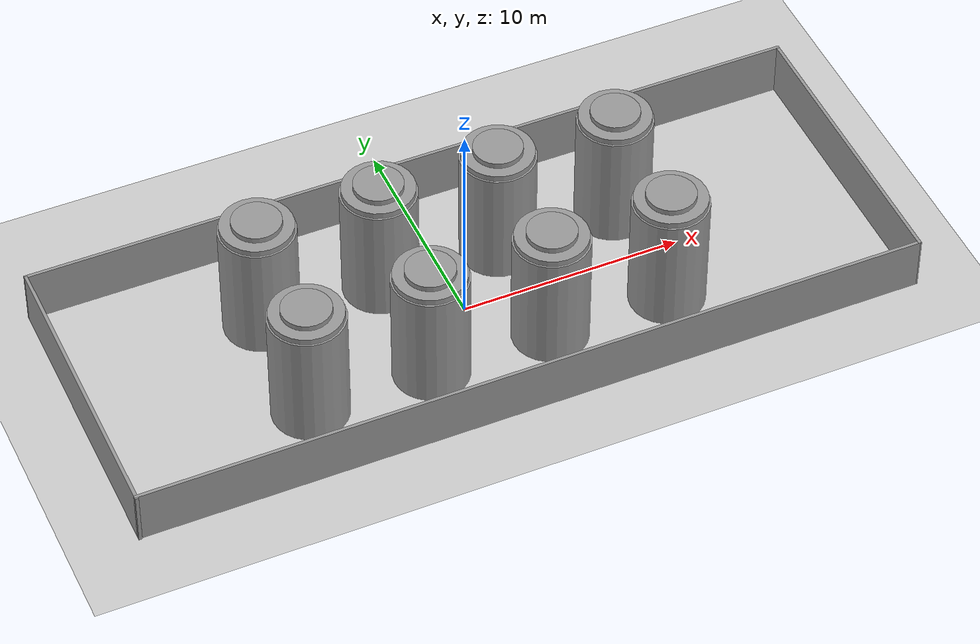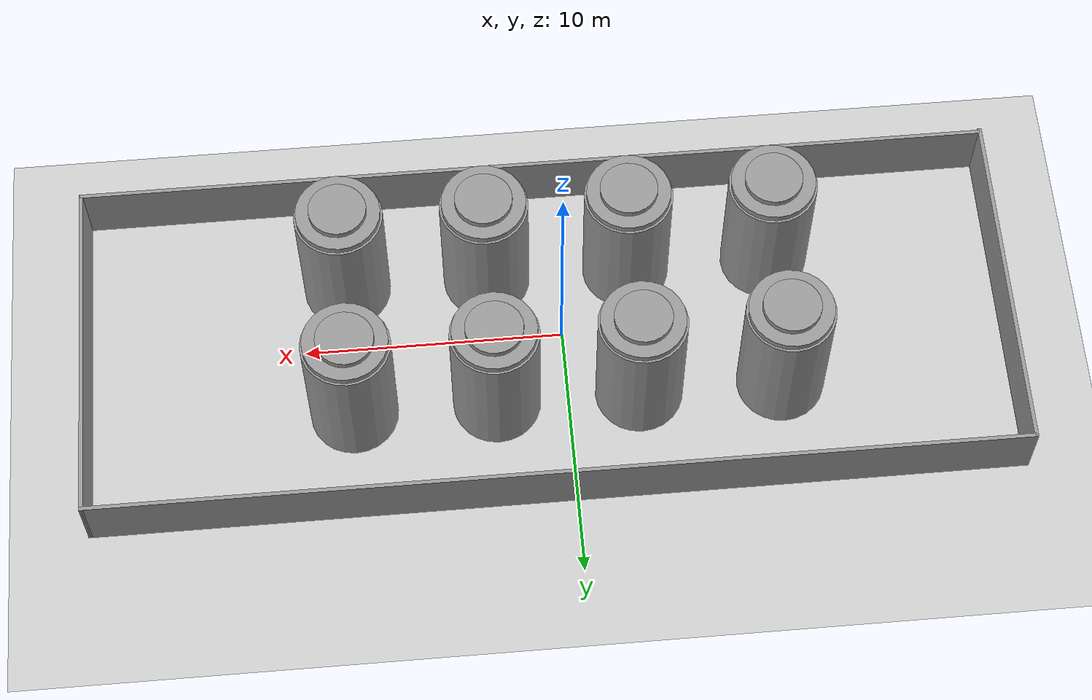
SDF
<sdf version="1.7">
 <world name="default">
  <light name="sun" type="directional">
   <pose>0 0 10 0 -0 0</pose>
   <diffuse>0.8 0.8 0.8 1</diffuse>
   <specular>0.2 0.2 0.2 1</specular>
   <attenuation>
    <range>1000</range>
    <constant>0.9</constant>
    <linear>0.01</linear>
    <quadratic>0.001</quadratic>
   </attenuation>
   <direction>-0.5 0.1 -0.9</direction>
   <spot><inner_angle>0</inner_angle><outer_angle>0</outer_angle><falloff>0</falloff></spot>
  </light>
  <model name="ground_plane">
   <static>1</static>
   <link name="link">
    <collision name="collision">
     <geometry><plane><normal>0 0 1</normal><size>100 100</size></plane></geometry>
     <surface>
      <contact><collide_bitmask>65535</collide_bitmask></contact>
      <friction><ode><mu>100</mu><mu2>50</mu2></ode></friction>
     </surface>
    </collision>
    <visual name="visual">
     <cast_shadows>0</cast_shadows>
     <geometry><plane><normal>0 0 1</normal><size>100 100</size></plane></geometry>
     <material>
      <script><uri>file://media/materials/scripts/gazebo.material</uri><name>Gazebo/Grey</name></script>
      <ambient>1 1 1 1</ambient>
     </material>
    </visual>
   </link>
  </model>
  <gravity>0 0 -9.8</gravity>
  <magnetic_field>6e-06 2.3e-05 -4.2e-05</magnetic_field>
  <atmosphere type="adiabatic"/>
  <physics type="ode">
   <max_step_size>0.001</max_step_size>
   <real_time_factor>1</real_time_factor>
   <real_time_update_rate>1000</real_time_update_rate>
  </physics>
  <scene><ambient>0.4 0.4 0.4 1</ambient><background>0 0.7 1 1</background><shadows>1</shadows></scene>
  <spherical_coordinates>
   <surface_model>EARTH_WGS84</surface_model>
   <latitude_deg>0</latitude_deg>
   <longitude_deg>0</longitude_deg>
   <elevation>0</elevation>
   <heading_deg>0</heading_deg>
  </spherical_coordinates>
  <model name="cask1">
   <link name="link">
    <inertial>
     <mass>1</mass>
     <inertia><ixx>0.145833</ixx><ixy>0</ixy><ixz>0</ixz><iyy>0.145833</iyy><iyz>0</iyz><izz>0.125</izz></inertia>
    </inertial>
    <self_collide>1</self_collide>
    <pose>0 0 2.8195 0 -0 0</pose>
    <visual name="visual">
     <geometry><cylinder><radius>1.683</radius><length>5.639</length></cylinder></geometry>
     <material>
      <script><name>Gazebo/Grey</name><uri>file://media/materials/scripts/gazebo.material</uri></script>
      <shader type="pixel"><normal_map>__default__</normal_map></shader>
      <ambient>0.75 0.75 0.75 1</ambient>
      <diffuse>0.7 0.7 0.7 1</diffuse>
      <specular>0.01 0.01 0.01 1</specular>
      <emissive>0 0 0 1</emissive>
     </material>
    </visual>
    <collision name="collision">
     <geometry><cylinder><radius>1.683</radius><length>5.639</length></cylinder></geometry>
     <surface>
      <friction>
       <ode><mu>1</mu><mu2>1</mu2><fdir1>0 0 0</fdir1><slip1>0</slip1><slip2>0</slip2></ode>
       <torsional>
        <coefficient>1</coefficient>
        <patch_radius>0</patch_radius>
        <surface_radius>0</surface_radius>
        <use_patch_radius>1</use_patch_radius>
        <ode><slip>0</slip></ode>
       </torsional>
      </friction>
      <bounce><restitution_coefficient>0</restitution_coefficient><threshold>1e+06</threshold></bounce>
      <contact>
       <collide_without_contact>0</collide_without_contact>
       <collide_without_contact_bitmask>1</collide_without_contact_bitmask>
       <collide_bitmask>1</collide_bitmask>
       <ode>
        <soft_cfm>0</soft_cfm>
        <soft_erp>0.2</soft_erp>
        <kp>1e+13</kp>
        <kd>1</kd>
        <max_vel>0.01</max_vel>
        <min_depth>0</min_depth>
       </ode>
       <bullet>
        <split_impulse>1</split_impulse>
        <split_impulse_penetration_threshold>-0.01</split_impulse_penetration_threshold>
        <soft_cfm>0</soft_cfm>
        <soft_erp>0.2</soft_erp>
        <kp>1e+13</kp>
        <kd>1</kd>
       </bullet>
      </contact>
     </surface>
    </collision>
   </link>
   <link name="link_0">
    <inertial>
     <mass>1</mass>
     <inertia><ixx>0.145833</ixx><ixy>0</ixy><ixz>0</ixz><iyy>0.145833</iyy><iyz>0</iyz><izz>0.125</izz></inertia>
    </inertial>
    <pose>0 0 5.7755 0 -0 0</pose>
    <self_collide>1</self_collide>
    <visual name="visual">
     <geometry><cylinder><radius>1.6</radius><length>0.273</length></cylinder></geometry>
     <material>
      <lighting>1</lighting>
      <script><uri>file://media/materials/scripts/gazebo.material</uri><name>Gazebo/Grey</name></script>
      <shader type="pixel"><normal_map>__default__</normal_map></shader>
      <ambient>0.74 0.74 0.74 1</ambient>
      <diffuse>0.7 0.7 0.7 1</diffuse>
      <specular>0.01 0.01 0.01 1</specular>
      <emissive>0 0 0 1</emissive>
     </material>
    </visual>
    <collision name="collision">
     <geometry><cylinder><radius>1.6</radius><length>0.273</length></cylinder></geometry>
     <surface>
      <friction>
       <ode><mu>1</mu><mu2>1</mu2><fdir1>0 0 0</fdir1><slip1>0</slip1><slip2>0</slip2></ode>
       <torsional>
        <coefficient>1</coefficient>
        <patch_radius>0</patch_radius>
        <surface_radius>0</surface_radius>
        <use_patch_radius>1</use_patch_radius>
        <ode><slip>0</slip></ode>
       </torsional>
      </friction>
      <bounce><restitution_coefficient>0</restitution_coefficient><threshold>1e+06</threshold></bounce>
      <contact>
       <collide_without_contact>0</collide_without_contact>
       <collide_without_contact_bitmask>1</collide_without_contact_bitmask>
       <collide_bitmask>1</collide_bitmask>
       <ode>
        <soft_cfm>0</soft_cfm>
        <soft_erp>0.2</soft_erp>
        <kp>1e+13</kp>
        <kd>1</kd>
        <max_vel>0.01</max_vel>
        <min_depth>0</min_depth>
       </ode>
       <bullet>
        <split_impulse>1</split_impulse>
        <split_impulse_penetration_threshold>-0.01</split_impulse_penetration_threshold>
        <soft_cfm>0</soft_cfm>
        <soft_erp>0.2</soft_erp>
        <kp>1e+13</kp>
        <kd>1</kd>
       </bullet>
      </contact>
     </surface>
    </collision>
   </link>
   <link name="link_1">
    <inertial>
     <mass>1</mass>
     <inertia><ixx>0.145833</ixx><ixy>0</ixy><ixz>0</ixz><iyy>0.145833</iyy><iyz>0</iyz><izz>0.125</izz></inertia>
    </inertial>
    <pose>-0 0 6.039 0 -0 0</pose>
    <self_collide>1</self_collide>
    <visual name="visual">
     <geometry><cylinder><radius>1.092</radius><length>0.254</length></cylinder></geometry>
     <material>
      <lighting>1</lighting>
      <script><uri>file://media/materials/scripts/gazebo.material</uri><name>Gazebo/Grey</name></script>
      <shader type="pixel"><normal_map>__default__</normal_map></shader>
      <ambient>0.73 0.73 0.73 1</ambient>
      <diffuse>0.7 0.7 0.7 1</diffuse>
      <specular>0.01 0.01 0.01 1</specular>
      <emissive>0 0 0 1</emissive>
     </material>
    </visual>
    <collision name="collision">
     <geometry><cylinder><radius>1.092</radius><length>0.254</length></cylinder></geometry>
     <surface>
      <friction>
       <ode><mu>1</mu><mu2>1</mu2><fdir1>0 0 0</fdir1><slip1>0</slip1><slip2>0</slip2></ode>
       <torsional>
        <coefficient>1</coefficient>
        <patch_radius>0</patch_radius>
        <surface_radius>0</surface_radius>
        <use_patch_radius>1</use_patch_radius>
        <ode><slip>0</slip></ode>
       </torsional>
      </friction>
      <bounce><restitution_coefficient>0</restitution_coefficient><threshold>1e+06</threshold></bounce>
      <contact>
       <collide_without_contact>0</collide_without_contact>
       <collide_without_contact_bitmask>1</collide_without_contact_bitmask>
       <collide_bitmask>1</collide_bitmask>
       <ode>
        <soft_cfm>0</soft_cfm>
        <soft_erp>0.2</soft_erp>
        <kp>1e+13</kp>
        <kd>1</kd>
        <max_vel>0.01</max_vel>
        <min_depth>0</min_depth>
       </ode>
       <bullet>
        <split_impulse>1</split_impulse>
        <split_impulse_penetration_threshold>-0.01</split_impulse_penetration_threshold>
        <soft_cfm>0</soft_cfm>
        <soft_erp>0.2</soft_erp>
        <kp>1e+13</kp>
        <kd>1</kd>
       </bullet>
      </contact>
     </surface>
    </collision>
   </link>
   <static>1</static>
   <pose>2.7432 2.7432 0 0 -0 0</pose>
  </model>
  <model name="cask1_0">
   <link name="link">
    <inertial>
     <mass>1</mass>
     <inertia><ixx>0.145833</ixx><ixy>0</ixy><ixz>0</ixz><iyy>0.145833</iyy><iyz>0</iyz><izz>0.125</izz></inertia>
    </inertial>
    <self_collide>1</self_collide>
    <pose>0 0 2.8195 0 -0 0</pose>
    <visual name="visual">
     <geometry><cylinder><radius>1.683</radius><length>5.639</length></cylinder></geometry>
     <material>
      <script><name>Gazebo/Grey</name><uri>file://media/materials/scripts/gazebo.material</uri></script>
      <shader type="pixel"><normal_map>__default__</normal_map></shader>
      <ambient>0.75 0.75 0.75 1</ambient>
      <diffuse>0.7 0.7 0.7 1</diffuse>
      <specular>0.01 0.01 0.01 1</specular>
      <emissive>0 0 0 1</emissive>
     </material>
    </visual>
    <collision name="collision">
     <geometry><cylinder><radius>1.683</radius><length>5.639</length></cylinder></geometry>
     <surface>
      <friction>
       <ode><mu>1</mu><mu2>1</mu2><fdir1>0 0 0</fdir1><slip1>0</slip1><slip2>0</slip2></ode>
       <torsional>
        <coefficient>1</coefficient>
        <patch_radius>0</patch_radius>
        <surface_radius>0</surface_radius>
        <use_patch_radius>1</use_patch_radius>
        <ode><slip>0</slip></ode>
       </torsional>
      </friction>
      <bounce><restitution_coefficient>0</restitution_coefficient><threshold>1e+06</threshold></bounce>
      <contact>
       <collide_without_contact>0</collide_without_contact>
       <collide_without_contact_bitmask>1</collide_without_contact_bitmask>
       <collide_bitmask>1</collide_bitmask>
       <ode>
        <soft_cfm>0</soft_cfm>
        <soft_erp>0.2</soft_erp>
        <kp>1e+13</kp>
        <kd>1</kd>
        <max_vel>0.01</max_vel>
        <min_depth>0</min_depth>
       </ode>
       <bullet>
        <split_impulse>1</split_impulse>
        <split_impulse_penetration_threshold>-0.01</split_impulse_penetration_threshold>
        <soft_cfm>0</soft_cfm>
        <soft_erp>0.2</soft_erp>
        <kp>1e+13</kp>
        <kd>1</kd>
       </bullet>
      </contact>
     </surface>
    </collision>
   </link>
   <link name="link_0">
    <inertial>
     <mass>1</mass>
     <inertia><ixx>0.145833</ixx><ixy>0</ixy><ixz>0</ixz><iyy>0.145833</iyy><iyz>0</iyz><izz>0.125</izz></inertia>
    </inertial>
    <pose>0 0 5.7755 0 -0 0</pose>
    <self_collide>1</self_collide>
    <visual name="visual">
     <geometry><cylinder><radius>1.6</radius><length>0.273</length></cylinder></geometry>
     <material>
      <lighting>1</lighting>
      <script><uri>file://media/materials/scripts/gazebo.material</uri><name>Gazebo/Grey</name></script>
      <shader type="pixel"><normal_map>__default__</normal_map></shader>
      <ambient>0.75 0.75 0.75 1</ambient>
      <diffuse>0.7 0.7 0.7 1</diffuse>
      <specular>0.01 0.01 0.01 1</specular>
      <emissive>0 0 0 1</emissive>
     </material>
    </visual>
    <collision name="collision">
     <geometry><cylinder><radius>1.6</radius><length>0.273</length></cylinder></geometry>
     <surface>
      <friction>
       <ode><mu>1</mu><mu2>1</mu2><fdir1>0 0 0</fdir1><slip1>0</slip1><slip2>0</slip2></ode>
       <torsional>
        <coefficient>1</coefficient>
        <patch_radius>0</patch_radius>
        <surface_radius>0</surface_radius>
        <use_patch_radius>1</use_patch_radius>
        <ode><slip>0</slip></ode>
       </torsional>
      </friction>
      <bounce><restitution_coefficient>0</restitution_coefficient><threshold>1e+06</threshold></bounce>
      <contact>
       <collide_without_contact>0</collide_without_contact>
       <collide_without_contact_bitmask>1</collide_without_contact_bitmask>
       <collide_bitmask>1</collide_bitmask>
       <ode>
        <soft_cfm>0</soft_cfm>
        <soft_erp>0.2</soft_erp>
        <kp>1e+13</kp>
        <kd>1</kd>
        <max_vel>0.01</max_vel>
        <min_depth>0</min_depth>
       </ode>
       <bullet>
        <split_impulse>1</split_impulse>
        <split_impulse_penetration_threshold>-0.01</split_impulse_penetration_threshold>
        <soft_cfm>0</soft_cfm>
        <soft_erp>0.2</soft_erp>
        <kp>1e+13</kp>
        <kd>1</kd>
       </bullet>
      </contact>
     </surface>
    </collision>
   </link>
   <link name="link_1">
    <inertial>
     <mass>1</mass>
     <inertia><ixx>0.145833</ixx><ixy>0</ixy><ixz>0</ixz><iyy>0.145833</iyy><iyz>0</iyz><izz>0.125</izz></inertia>
    </inertial>
    <pose>-0 0 6.039 0 -0 0</pose>
    <self_collide>1</self_collide>
    <visual name="visual">
     <geometry><cylinder><radius>1.092</radius><length>0.254</length></cylinder></geometry>
     <material>
      <lighting>1</lighting>
      <script><uri>file://media/materials/scripts/gazebo.material</uri><name>Gazebo/Grey</name></script>
      <shader type="pixel"><normal_map>__default__</normal_map></shader>
      <ambient>0.75 0.75 0.75 1</ambient>
      <diffuse>0.7 0.7 0.7 1</diffuse>
      <specular>0.01 0.01 0.01 1</specular>
      <emissive>0 0 0 1</emissive>
     </material>
    </visual>
    <collision name="collision">
     <geometry><cylinder><radius>1.092</radius><length>0.254</length></cylinder></geometry>
     <surface>
      <friction>
       <ode><mu>1</mu><mu2>1</mu2><fdir1>0 0 0</fdir1><slip1>0</slip1><slip2>0</slip2></ode>
       <torsional>
        <coefficient>1</coefficient>
        <patch_radius>0</patch_radius>
        <surface_radius>0</surface_radius>
        <use_patch_radius>1</use_patch_radius>
        <ode><slip>0</slip></ode>
       </torsional>
      </friction>
      <bounce><restitution_coefficient>0</restitution_coefficient><threshold>1e+06</threshold></bounce>
      <contact>
       <collide_without_contact>0</collide_without_contact>
       <collide_without_contact_bitmask>1</collide_without_contact_bitmask>
       <collide_bitmask>1</collide_bitmask>
       <ode>
        <soft_cfm>0</soft_cfm>
        <soft_erp>0.2</soft_erp>
        <kp>1e+13</kp>
        <kd>1</kd>
        <max_vel>0.01</max_vel>
        <min_depth>0</min_depth>
       </ode>
       <bullet>
        <split_impulse>1</split_impulse>
        <split_impulse_penetration_threshold>-0.01</split_impulse_penetration_threshold>
        <soft_cfm>0</soft_cfm>
        <soft_erp>0.2</soft_erp>
        <kp>1e+13</kp>
        <kd>1</kd>
       </bullet>
      </contact>
     </surface>
    </collision>
   </link>
   <static>1</static>
   <pose>2.7432 -2.7432 0 0 -0 0</pose>
  </model>
  <model name="cask1_1">
   <link name="link">
    <inertial>
     <mass>1</mass>
     <inertia><ixx>0.145833</ixx><ixy>0</ixy><ixz>0</ixz><iyy>0.145833</iyy><iyz>0</iyz><izz>0.125</izz></inertia>
    </inertial>
    <self_collide>1</self_collide>
    <pose>0 0 2.8195 0 -0 0</pose>
    <visual name="visual">
     <geometry><cylinder><radius>1.683</radius><length>5.639</length></cylinder></geometry>
     <material>
      <script><name>Gazebo/Grey</name><uri>file://media/materials/scripts/gazebo.material</uri></script>
      <shader type="pixel"><normal_map>__default__</normal_map></shader>
      <ambient>0.75 0.75 0.75 1</ambient>
      <diffuse>0.7 0.7 0.7 1</diffuse>
      <specular>0.01 0.01 0.01 1</specular>
      <emissive>0 0 0 1</emissive>
     </material>
    </visual>
    <collision name="collision">
     <geometry><cylinder><radius>1.683</radius><length>5.639</length></cylinder></geometry>
     <surface>
      <friction>
       <ode><mu>1</mu><mu2>1</mu2><fdir1>0 0 0</fdir1><slip1>0</slip1><slip2>0</slip2></ode>
       <torsional>
        <coefficient>1</coefficient>
        <patch_radius>0</patch_radius>
        <surface_radius>0</surface_radius>
        <use_patch_radius>1</use_patch_radius>
        <ode><slip>0</slip></ode>
       </torsional>
      </friction>
      <bounce><restitution_coefficient>0</restitution_coefficient><threshold>1e+06</threshold></bounce>
      <contact>
       <collide_without_contact>0</collide_without_contact>
       <collide_without_contact_bitmask>1</collide_without_contact_bitmask>
       <collide_bitmask>1</collide_bitmask>
       <ode>
        <soft_cfm>0</soft_cfm>
        <soft_erp>0.2</soft_erp>
        <kp>1e+13</kp>
        <kd>1</kd>
        <max_vel>0.01</max_vel>
        <min_depth>0</min_depth>
       </ode>
       <bullet>
        <split_impulse>1</split_impulse>
        <split_impulse_penetration_threshold>-0.01</split_impulse_penetration_threshold>
        <soft_cfm>0</soft_cfm>
        <soft_erp>0.2</soft_erp>
        <kp>1e+13</kp>
        <kd>1</kd>
       </bullet>
      </contact>
     </surface>
    </collision>
   </link>
   <link name="link_0">
    <inertial>
     <mass>1</mass>
     <inertia><ixx>0.145833</ixx><ixy>0</ixy><ixz>0</ixz><iyy>0.145833</iyy><iyz>0</iyz><izz>0.125</izz></inertia>
    </inertial>
    <pose>0 0 5.7755 0 -0 0</pose>
    <self_collide>1</self_collide>
    <visual name="visual">
     <geometry><cylinder><radius>1.6</radius><length>0.273</length></cylinder></geometry>
     <material>
      <lighting>1</lighting>
      <script><uri>file://media/materials/scripts/gazebo.material</uri><name>Gazebo/Grey</name></script>
      <shader type="pixel"><normal_map>__default__</normal_map></shader>
      <ambient>0.75 0.75 0.75 1</ambient>
      <diffuse>0.7 0.7 0.7 1</diffuse>
      <specular>0.01 0.01 0.01 1</specular>
      <emissive>0 0 0 1</emissive>
     </material>
    </visual>
    <collision name="collision">
     <geometry><cylinder><radius>1.6</radius><length>0.273</length></cylinder></geometry>
     <surface>
      <friction>
       <ode><mu>1</mu><mu2>1</mu2><fdir1>0 0 0</fdir1><slip1>0</slip1><slip2>0</slip2></ode>
       <torsional>
        <coefficient>1</coefficient>
        <patch_radius>0</patch_radius>
        <surface_radius>0</surface_radius>
        <use_patch_radius>1</use_patch_radius>
        <ode><slip>0</slip></ode>
       </torsional>
      </friction>
      <bounce><restitution_coefficient>0</restitution_coefficient><threshold>1e+06</threshold></bounce>
      <contact>
       <collide_without_contact>0</collide_without_contact>
       <collide_without_contact_bitmask>1</collide_without_contact_bitmask>
       <collide_bitmask>1</collide_bitmask>
       <ode>
        <soft_cfm>0</soft_cfm>
        <soft_erp>0.2</soft_erp>
        <kp>1e+13</kp>
        <kd>1</kd>
        <max_vel>0.01</max_vel>
        <min_depth>0</min_depth>
       </ode>
       <bullet>
        <split_impulse>1</split_impulse>
        <split_impulse_penetration_threshold>-0.01</split_impulse_penetration_threshold>
        <soft_cfm>0</soft_cfm>
        <soft_erp>0.2</soft_erp>
        <kp>1e+13</kp>
        <kd>1</kd>
       </bullet>
      </contact>
     </surface>
    </collision>
   </link>
   <link name="link_1">
    <inertial>
     <mass>1</mass>
     <inertia><ixx>0.145833</ixx><ixy>0</ixy><ixz>0</ixz><iyy>0.145833</iyy><iyz>0</iyz><izz>0.125</izz></inertia>
    </inertial>
    <pose>-0 0 6.039 0 -0 0</pose>
    <self_collide>1</self_collide>
    <visual name="visual">
     <geometry><cylinder><radius>1.092</radius><length>0.254</length></cylinder></geometry>
     <material>
      <lighting>1</lighting>
      <script><uri>file://media/materials/scripts/gazebo.material</uri><name>Gazebo/Grey</name></script>
      <shader type="pixel"><normal_map>__default__</normal_map></shader>
      <ambient>0.75 0.75 0.75 1</ambient>
      <diffuse>0.7 0.7 0.7 1</diffuse>
      <specular>0.01 0.01 0.01 1</specular>
      <emissive>0 0 0 1</emissive>
     </material>
    </visual>
    <collision name="collision">
     <geometry><cylinder><radius>1.092</radius><length>0.254</length></cylinder></geometry>
     <surface>
      <friction>
       <ode><mu>1</mu><mu2>1</mu2><fdir1>0 0 0</fdir1><slip1>0</slip1><slip2>0</slip2></ode>
       <torsional>
        <coefficient>1</coefficient>
        <patch_radius>0</patch_radius>
        <surface_radius>0</surface_radius>
        <use_patch_radius>1</use_patch_radius>
        <ode><slip>0</slip></ode>
       </torsional>
      </friction>
      <bounce><restitution_coefficient>0</restitution_coefficient><threshold>1e+06</threshold></bounce>
      <contact>
       <collide_without_contact>0</collide_without_contact>
       <collide_without_contact_bitmask>1</collide_without_contact_bitmask>
       <collide_bitmask>1</collide_bitmask>
       <ode>
        <soft_cfm>0</soft_cfm>
        <soft_erp>0.2</soft_erp>
        <kp>1e+13</kp>
        <kd>1</kd>
        <max_vel>0.01</max_vel>
        <min_depth>0</min_depth>
       </ode>
       <bullet>
        <split_impulse>1</split_impulse>
        <split_impulse_penetration_threshold>-0.01</split_impulse_penetration_threshold>
        <soft_cfm>0</soft_cfm>
        <soft_erp>0.2</soft_erp>
        <kp>1e+13</kp>
        <kd>1</kd>
       </bullet>
      </contact>
     </surface>
    </collision>
   </link>
   <static>1</static>
   <pose>-2.7432 2.7432 0 0 -0 0</pose>
  </model>
  <model name="cask1_2">
   <link name="link">
    <inertial>
     <mass>1</mass>
     <inertia><ixx>0.145833</ixx><ixy>0</ixy><ixz>0</ixz><iyy>0.145833</iyy><iyz>0</iyz><izz>0.125</izz></inertia>
    </inertial>
    <self_collide>1</self_collide>
    <pose>0 0 2.8195 0 -0 0</pose>
    <visual name="visual">
     <geometry><cylinder><radius>1.683</radius><length>5.639</length></cylinder></geometry>
     <material>
      <script><name>Gazebo/Grey</name><uri>file://media/materials/scripts/gazebo.material</uri></script>
      <shader type="pixel"><normal_map>__default__</normal_map></shader>
      <ambient>0.75 0.75 0.75 1</ambient>
      <diffuse>0.7 0.7 0.7 1</diffuse>
      <specular>0.01 0.01 0.01 1</specular>
      <emissive>0 0 0 1</emissive>
     </material>
    </visual>
    <collision name="collision">
     <geometry><cylinder><radius>1.683</radius><length>5.639</length></cylinder></geometry>
     <surface>
      <friction>
       <ode><mu>1</mu><mu2>1</mu2><fdir1>0 0 0</fdir1><slip1>0</slip1><slip2>0</slip2></ode>
       <torsional>
        <coefficient>1</coefficient>
        <patch_radius>0</patch_radius>
        <surface_radius>0</surface_radius>
        <use_patch_radius>1</use_patch_radius>
        <ode><slip>0</slip></ode>
       </torsional>
      </friction>
      <bounce><restitution_coefficient>0</restitution_coefficient><threshold>1e+06</threshold></bounce>
      <contact>
       <collide_without_contact>0</collide_without_contact>
       <collide_without_contact_bitmask>1</collide_without_contact_bitmask>
       <collide_bitmask>1</collide_bitmask>
       <ode>
        <soft_cfm>0</soft_cfm>
        <soft_erp>0.2</soft_erp>
        <kp>1e+13</kp>
        <kd>1</kd>
        <max_vel>0.01</max_vel>
        <min_depth>0</min_depth>
       </ode>
       <bullet>
        <split_impulse>1</split_impulse>
        <split_impulse_penetration_threshold>-0.01</split_impulse_penetration_threshold>
        <soft_cfm>0</soft_cfm>
        <soft_erp>0.2</soft_erp>
        <kp>1e+13</kp>
        <kd>1</kd>
       </bullet>
      </contact>
     </surface>
    </collision>
   </link>
   <link name="link_0">
    <inertial>
     <mass>1</mass>
     <inertia><ixx>0.145833</ixx><ixy>0</ixy><ixz>0</ixz><iyy>0.145833</iyy><iyz>0</iyz><izz>0.125</izz></inertia>
    </inertial>
    <pose>0 0 5.7755 0 -0 0</pose>
    <self_collide>1</self_collide>
    <visual name="visual">
     <geometry><cylinder><radius>1.6</radius><length>0.273</length></cylinder></geometry>
     <material>
      <lighting>1</lighting>
      <script><uri>file://media/materials/scripts/gazebo.material</uri><name>Gazebo/Grey</name></script>
      <shader type="pixel"><normal_map>__default__</normal_map></shader>
      <ambient>0.75 0.75 0.75 1</ambient>
      <diffuse>0.7 0.7 0.7 1</diffuse>
      <specular>0.01 0.01 0.01 1</specular>
      <emissive>0 0 0 1</emissive>
     </material>
    </visual>
    <collision name="collision">
     <geometry><cylinder><radius>1.6</radius><length>0.273</length></cylinder></geometry>
     <surface>
      <friction>
       <ode><mu>1</mu><mu2>1</mu2><fdir1>0 0 0</fdir1><slip1>0</slip1><slip2>0</slip2></ode>
       <torsional>
        <coefficient>1</coefficient>
        <patch_radius>0</patch_radius>
        <surface_radius>0</surface_radius>
        <use_patch_radius>1</use_patch_radius>
        <ode><slip>0</slip></ode>
       </torsional>
      </friction>
      <bounce><restitution_coefficient>0</restitution_coefficient><threshold>1e+06</threshold></bounce>
      <contact>
       <collide_without_contact>0</collide_without_contact>
       <collide_without_contact_bitmask>1</collide_without_contact_bitmask>
       <collide_bitmask>1</collide_bitmask>
       <ode>
        <soft_cfm>0</soft_cfm>
        <soft_erp>0.2</soft_erp>
        <kp>1e+13</kp>
        <kd>1</kd>
        <max_vel>0.01</max_vel>
        <min_depth>0</min_depth>
       </ode>
       <bullet>
        <split_impulse>1</split_impulse>
        <split_impulse_penetration_threshold>-0.01</split_impulse_penetration_threshold>
        <soft_cfm>0</soft_cfm>
        <soft_erp>0.2</soft_erp>
        <kp>1e+13</kp>
        <kd>1</kd>
       </bullet>
      </contact>
     </surface>
    </collision>
   </link>
   <link name="link_1">
    <inertial>
     <mass>1</mass>
     <inertia><ixx>0.145833</ixx><ixy>0</ixy><ixz>0</ixz><iyy>0.145833</iyy><iyz>0</iyz><izz>0.125</izz></inertia>
    </inertial>
    <pose>-0 0 6.039 0 -0 0</pose>
    <self_collide>1</self_collide>
    <visual name="visual">
     <geometry><cylinder><radius>1.092</radius><length>0.254</length></cylinder></geometry>
     <material>
      <lighting>1</lighting>
      <script><uri>file://media/materials/scripts/gazebo.material</uri><name>Gazebo/Grey</name></script>
      <shader type="pixel"><normal_map>__default__</normal_map></shader>
      <ambient>0.75 0.75 0.75 1</ambient>
      <diffuse>0.7 0.7 0.7 1</diffuse>
      <specular>0.01 0.01 0.01 1</specular>
      <emissive>0 0 0 1</emissive>
     </material>
    </visual>
    <collision name="collision">
     <geometry><cylinder><radius>1.092</radius><length>0.254</length></cylinder></geometry>
     <surface>
      <friction>
       <ode><mu>1</mu><mu2>1</mu2><fdir1>0 0 0</fdir1><slip1>0</slip1><slip2>0</slip2></ode>
       <torsional>
        <coefficient>1</coefficient>
        <patch_radius>0</patch_radius>
        <surface_radius>0</surface_radius>
        <use_patch_radius>1</use_patch_radius>
        <ode><slip>0</slip></ode>
       </torsional>
      </friction>
      <bounce><restitution_coefficient>0</restitution_coefficient><threshold>1e+06</threshold></bounce>
      <contact>
       <collide_without_contact>0</collide_without_contact>
       <collide_without_contact_bitmask>1</collide_without_contact_bitmask>
       <collide_bitmask>1</collide_bitmask>
       <ode>
        <soft_cfm>0</soft_cfm>
        <soft_erp>0.2</soft_erp>
        <kp>1e+13</kp>
        <kd>1</kd>
        <max_vel>0.01</max_vel>
        <min_depth>0</min_depth>
       </ode>
       <bullet>
        <split_impulse>1</split_impulse>
        <split_impulse_penetration_threshold>-0.01</split_impulse_penetration_threshold>
        <soft_cfm>0</soft_cfm>
        <soft_erp>0.2</soft_erp>
        <kp>1e+13</kp>
        <kd>1</kd>
       </bullet>
      </contact>
     </surface>
    </collision>
   </link>
   <static>1</static>
   <pose>-2.7432 -2.7432 0 0 -0 0</pose>
  </model>
  <model name="cask1_3">
   <link name="link">
    <inertial>
     <mass>1</mass>
     <inertia><ixx>0.145833</ixx><ixy>0</ixy><ixz>0</ixz><iyy>0.145833</iyy><iyz>0</iyz><izz>0.125</izz></inertia>
    </inertial>
    <self_collide>1</self_collide>
    <pose>0 0 2.8195 0 -0 0</pose>
    <visual name="visual">
     <geometry><cylinder><radius>1.683</radius><length>5.639</length></cylinder></geometry>
     <material>
      <script><name>Gazebo/Grey</name><uri>file://media/materials/scripts/gazebo.material</uri></script>
      <shader type="pixel"><normal_map>__default__</normal_map></shader>
      <ambient>0.75 0.75 0.75 1</ambient>
      <diffuse>0.7 0.7 0.7 1</diffuse>
      <specular>0.01 0.01 0.01 1</specular>
      <emissive>0 0 0 1</emissive>
     </material>
    </visual>
    <collision name="collision">
     <geometry><cylinder><radius>1.683</radius><length>5.639</length></cylinder></geometry>
     <surface>
      <friction>
       <ode><mu>1</mu><mu2>1</mu2><fdir1>0 0 0</fdir1><slip1>0</slip1><slip2>0</slip2></ode>
       <torsional>
        <coefficient>1</coefficient>
        <patch_radius>0</patch_radius>
        <surface_radius>0</surface_radius>
        <use_patch_radius>1</use_patch_radius>
        <ode><slip>0</slip></ode>
       </torsional>
      </friction>
      <bounce><restitution_coefficient>0</restitution_coefficient><threshold>1e+06</threshold></bounce>
      <contact>
       <collide_without_contact>0</collide_without_contact>
       <collide_without_contact_bitmask>1</collide_without_contact_bitmask>
       <collide_bitmask>1</collide_bitmask>
       <ode>
        <soft_cfm>0</soft_cfm>
        <soft_erp>0.2</soft_erp>
        <kp>1e+13</kp>
        <kd>1</kd>
        <max_vel>0.01</max_vel>
        <min_depth>0</min_depth>
       </ode>
       <bullet>
        <split_impulse>1</split_impulse>
        <split_impulse_penetration_threshold>-0.01</split_impulse_penetration_threshold>
        <soft_cfm>0</soft_cfm>
        <soft_erp>0.2</soft_erp>
        <kp>1e+13</kp>
        <kd>1</kd>
       </bullet>
      </contact>
     </surface>
    </collision>
   </link>
   <link name="link_0">
    <inertial>
     <mass>1</mass>
     <inertia><ixx>0.145833</ixx><ixy>0</ixy><ixz>0</ixz><iyy>0.145833</iyy><iyz>0</iyz><izz>0.125</izz></inertia>
    </inertial>
    <pose>0 0 5.7755 0 -0 0</pose>
    <self_collide>1</self_collide>
    <visual name="visual">
     <geometry><cylinder><radius>1.6</radius><length>0.273</length></cylinder></geometry>
     <material>
      <lighting>1</lighting>
      <script><uri>file://media/materials/scripts/gazebo.material</uri><name>Gazebo/Grey</name></script>
      <shader type="pixel"><normal_map>__default__</normal_map></shader>
      <ambient>0.75 0.75 0.75 1</ambient>
      <diffuse>0.7 0.7 0.7 1</diffuse>
      <specular>0.01 0.01 0.01 1</specular>
      <emissive>0 0 0 1</emissive>
     </material>
    </visual>
    <collision name="collision">
     <geometry><cylinder><radius>1.6</radius><length>0.273</length></cylinder></geometry>
     <surface>
      <friction>
       <ode><mu>1</mu><mu2>1</mu2><fdir1>0 0 0</fdir1><slip1>0</slip1><slip2>0</slip2></ode>
       <torsional>
        <coefficient>1</coefficient>
        <patch_radius>0</patch_radius>
        <surface_radius>0</surface_radius>
        <use_patch_radius>1</use_patch_radius>
        <ode><slip>0</slip></ode>
       </torsional>
      </friction>
      <bounce><restitution_coefficient>0</restitution_coefficient><threshold>1e+06</threshold></bounce>
      <contact>
       <collide_without_contact>0</collide_without_contact>
       <collide_without_contact_bitmask>1</collide_without_contact_bitmask>
       <collide_bitmask>1</collide_bitmask>
       <ode>
        <soft_cfm>0</soft_cfm>
        <soft_erp>0.2</soft_erp>
        <kp>1e+13</kp>
        <kd>1</kd>
        <max_vel>0.01</max_vel>
        <min_depth>0</min_depth>
       </ode>
       <bullet>
        <split_impulse>1</split_impulse>
        <split_impulse_penetration_threshold>-0.01</split_impulse_penetration_threshold>
        <soft_cfm>0</soft_cfm>
        <soft_erp>0.2</soft_erp>
        <kp>1e+13</kp>
        <kd>1</kd>
       </bullet>
      </contact>
     </surface>
    </collision>
   </link>
   <link name="link_1">
    <inertial>
     <mass>1</mass>
     <inertia><ixx>0.145833</ixx><ixy>0</ixy><ixz>0</ixz><iyy>0.145833</iyy><iyz>0</iyz><izz>0.125</izz></inertia>
    </inertial>
    <pose>-0 0 6.039 0 -0 0</pose>
    <self_collide>1</self_collide>
    <visual name="visual">
     <geometry><cylinder><radius>1.092</radius><length>0.254</length></cylinder></geometry>
     <material>
      <lighting>1</lighting>
      <script><uri>file://media/materials/scripts/gazebo.material</uri><name>Gazebo/Grey</name></script>
      <shader type="pixel"><normal_map>__default__</normal_map></shader>
      <ambient>0.75 0.75 0.75 1</ambient>
      <diffuse>0.7 0.7 0.7 1</diffuse>
      <specular>0.01 0.01 0.01 1</specular>
      <emissive>0 0 0 1</emissive>
     </material>
    </visual>
    <collision name="collision">
     <geometry><cylinder><radius>1.092</radius><length>0.254</length></cylinder></geometry>
     <surface>
      <friction>
       <ode><mu>1</mu><mu2>1</mu2><fdir1>0 0 0</fdir1><slip1>0</slip1><slip2>0</slip2></ode>
       <torsional>
        <coefficient>1</coefficient>
        <patch_radius>0</patch_radius>
        <surface_radius>0</surface_radius>
        <use_patch_radius>1</use_patch_radius>
        <ode><slip>0</slip></ode>
       </torsional>
      </friction>
      <bounce><restitution_coefficient>0</restitution_coefficient><threshold>1e+06</threshold></bounce>
      <contact>
       <collide_without_contact>0</collide_without_contact>
       <collide_without_contact_bitmask>1</collide_without_contact_bitmask>
       <collide_bitmask>1</collide_bitmask>
       <ode>
        <soft_cfm>0</soft_cfm>
        <soft_erp>0.2</soft_erp>
        <kp>1e+13</kp>
        <kd>1</kd>
        <max_vel>0.01</max_vel>
        <min_depth>0</min_depth>
       </ode>
       <bullet>
        <split_impulse>1</split_impulse>
        <split_impulse_penetration_threshold>-0.01</split_impulse_penetration_threshold>
        <soft_cfm>0</soft_cfm>
        <soft_erp>0.2</soft_erp>
        <kp>1e+13</kp>
        <kd>1</kd>
       </bullet>
      </contact>
     </surface>
    </collision>
   </link>
   <static>1</static>
   <pose>8.2296 2.7432 0 0 -0 0</pose>
  </model>
  <model name="cask1_4">
   <link name="link">
    <inertial>
     <mass>1</mass>
     <inertia><ixx>0.145833</ixx><ixy>0</ixy><ixz>0</ixz><iyy>0.145833</iyy><iyz>0</iyz><izz>0.125</izz></inertia>
    </inertial>
    <self_collide>1</self_collide>
    <pose>0 0 2.8195 0 -0 0</pose>
    <visual name="visual">
     <geometry><cylinder><radius>1.683</radius><length>5.639</length></cylinder></geometry>
     <material>
      <script><name>Gazebo/Grey</name><uri>file://media/materials/scripts/gazebo.material</uri></script>
      <shader type="pixel"><normal_map>__default__</normal_map></shader>
      <ambient>0.75 0.75 0.75 1</ambient>
      <diffuse>0.7 0.7 0.7 1</diffuse>
      <specular>0.01 0.01 0.01 1</specular>
      <emissive>0 0 0 1</emissive>
     </material>
    </visual>
    <collision name="collision">
     <geometry><cylinder><radius>1.683</radius><length>5.639</length></cylinder></geometry>
     <surface>
      <friction>
       <ode><mu>1</mu><mu2>1</mu2><fdir1>0 0 0</fdir1><slip1>0</slip1><slip2>0</slip2></ode>
       <torsional>
        <coefficient>1</coefficient>
        <patch_radius>0</patch_radius>
        <surface_radius>0</surface_radius>
        <use_patch_radius>1</use_patch_radius>
        <ode><slip>0</slip></ode>
       </torsional>
      </friction>
      <bounce><restitution_coefficient>0</restitution_coefficient><threshold>1e+06</threshold></bounce>
      <contact>
       <collide_without_contact>0</collide_without_contact>
       <collide_without_contact_bitmask>1</collide_without_contact_bitmask>
       <collide_bitmask>1</collide_bitmask>
       <ode>
        <soft_cfm>0</soft_cfm>
        <soft_erp>0.2</soft_erp>
        <kp>1e+13</kp>
        <kd>1</kd>
        <max_vel>0.01</max_vel>
        <min_depth>0</min_depth>
       </ode>
       <bullet>
        <split_impulse>1</split_impulse>
        <split_impulse_penetration_threshold>-0.01</split_impulse_penetration_threshold>
        <soft_cfm>0</soft_cfm>
        <soft_erp>0.2</soft_erp>
        <kp>1e+13</kp>
        <kd>1</kd>
       </bullet>
      </contact>
     </surface>
    </collision>
   </link>
   <link name="link_0">
    <inertial>
     <mass>1</mass>
     <inertia><ixx>0.145833</ixx><ixy>0</ixy><ixz>0</ixz><iyy>0.145833</iyy><iyz>0</iyz><izz>0.125</izz></inertia>
    </inertial>
    <pose>0 0 5.7755 0 -0 0</pose>
    <self_collide>1</self_collide>
    <visual name="visual">
     <geometry><cylinder><radius>1.6</radius><length>0.273</length></cylinder></geometry>
     <material>
      <lighting>1</lighting>
      <script><uri>file://media/materials/scripts/gazebo.material</uri><name>Gazebo/Grey</name></script>
      <shader type="pixel"><normal_map>__default__</normal_map></shader>
      <ambient>0.75 0.75 0.75 1</ambient>
      <diffuse>0.7 0.7 0.7 1</diffuse>
      <specular>0.01 0.01 0.01 1</specular>
      <emissive>0 0 0 1</emissive>
     </material>
    </visual>
    <collision name="collision">
     <geometry><cylinder><radius>1.6</radius><length>0.273</length></cylinder></geometry>
     <surface>
      <friction>
       <ode><mu>1</mu><mu2>1</mu2><fdir1>0 0 0</fdir1><slip1>0</slip1><slip2>0</slip2></ode>
       <torsional>
        <coefficient>1</coefficient>
        <patch_radius>0</patch_radius>
        <surface_radius>0</surface_radius>
        <use_patch_radius>1</use_patch_radius>
        <ode><slip>0</slip></ode>
       </torsional>
      </friction>
      <bounce><restitution_coefficient>0</restitution_coefficient><threshold>1e+06</threshold></bounce>
      <contact>
       <collide_without_contact>0</collide_without_contact>
       <collide_without_contact_bitmask>1</collide_without_contact_bitmask>
       <collide_bitmask>1</collide_bitmask>
       <ode>
        <soft_cfm>0</soft_cfm>
        <soft_erp>0.2</soft_erp>
        <kp>1e+13</kp>
        <kd>1</kd>
        <max_vel>0.01</max_vel>
        <min_depth>0</min_depth>
       </ode>
       <bullet>
        <split_impulse>1</split_impulse>
        <split_impulse_penetration_threshold>-0.01</split_impulse_penetration_threshold>
        <soft_cfm>0</soft_cfm>
        <soft_erp>0.2</soft_erp>
        <kp>1e+13</kp>
        <kd>1</kd>
       </bullet>
      </contact>
     </surface>
    </collision>
   </link>
   <link name="link_1">
    <inertial>
     <mass>1</mass>
     <inertia><ixx>0.145833</ixx><ixy>0</ixy><ixz>0</ixz><iyy>0.145833</iyy><iyz>0</iyz><izz>0.125</izz></inertia>
    </inertial>
    <pose>-0 0 6.039 0 -0 0</pose>
    <self_collide>1</self_collide>
    <visual name="visual">
     <geometry><cylinder><radius>1.092</radius><length>0.254</length></cylinder></geometry>
     <material>
      <lighting>1</lighting>
      <script><uri>file://media/materials/scripts/gazebo.material</uri><name>Gazebo/Grey</name></script>
      <shader type="pixel"><normal_map>__default__</normal_map></shader>
      <ambient>0.75 0.75 0.75 1</ambient>
      <diffuse>0.7 0.7 0.7 1</diffuse>
      <specular>0.01 0.01 0.01 1</specular>
      <emissive>0 0 0 1</emissive>
     </material>
    </visual>
    <collision name="collision">
     <geometry><cylinder><radius>1.092</radius><length>0.254</length></cylinder></geometry>
     <surface>
      <friction>
       <ode><mu>1</mu><mu2>1</mu2><fdir1>0 0 0</fdir1><slip1>0</slip1><slip2>0</slip2></ode>
       <torsional>
        <coefficient>1</coefficient>
        <patch_radius>0</patch_radius>
        <surface_radius>0</surface_radius>
        <use_patch_radius>1</use_patch_radius>
        <ode><slip>0</slip></ode>
       </torsional>
      </friction>
      <bounce><restitution_coefficient>0</restitution_coefficient><threshold>1e+06</threshold></bounce>
      <contact>
       <collide_without_contact>0</collide_without_contact>
       <collide_without_contact_bitmask>1</collide_without_contact_bitmask>
       <collide_bitmask>1</collide_bitmask>
       <ode>
        <soft_cfm>0</soft_cfm>
        <soft_erp>0.2</soft_erp>
        <kp>1e+13</kp>
        <kd>1</kd>
        <max_vel>0.01</max_vel>
        <min_depth>0</min_depth>
       </ode>
       <bullet>
        <split_impulse>1</split_impulse>
        <split_impulse_penetration_threshold>-0.01</split_impulse_penetration_threshold>
        <soft_cfm>0</soft_cfm>
        <soft_erp>0.2</soft_erp>
        <kp>1e+13</kp>
        <kd>1</kd>
       </bullet>
      </contact>
     </surface>
    </collision>
   </link>
   <static>1</static>
   <pose>8.2296 -2.7432 0 0 -0 0</pose>
  </model>
  <model name="cask1_5">
   <link name="link">
    <inertial>
     <mass>1</mass>
     <inertia><ixx>0.145833</ixx><ixy>0</ixy><ixz>0</ixz><iyy>0.145833</iyy><iyz>0</iyz><izz>0.125</izz></inertia>
    </inertial>
    <self_collide>1</self_collide>
    <pose>0 0 2.8195 0 -0 0</pose>
    <visual name="visual">
     <geometry><cylinder><radius>1.683</radius><length>5.639</length></cylinder></geometry>
     <material>
      <script><name>Gazebo/Grey</name><uri>file://media/materials/scripts/gazebo.material</uri></script>
      <shader type="pixel"><normal_map>__default__</normal_map></shader>
      <ambient>0.75 0.75 0.75 1</ambient>
      <diffuse>0.7 0.7 0.7 1</diffuse>
      <specular>0.01 0.01 0.01 1</specular>
      <emissive>0 0 0 1</emissive>
     </material>
    </visual>
    <collision name="collision">
     <geometry><cylinder><radius>1.683</radius><length>5.639</length></cylinder></geometry>
     <surface>
      <friction>
       <ode><mu>1</mu><mu2>1</mu2><fdir1>0 0 0</fdir1><slip1>0</slip1><slip2>0</slip2></ode>
       <torsional>
        <coefficient>1</coefficient>
        <patch_radius>0</patch_radius>
        <surface_radius>0</surface_radius>
        <use_patch_radius>1</use_patch_radius>
        <ode><slip>0</slip></ode>
       </torsional>
      </friction>
      <bounce><restitution_coefficient>0</restitution_coefficient><threshold>1e+06</threshold></bounce>
      <contact>
       <collide_without_contact>0</collide_without_contact>
       <collide_without_contact_bitmask>1</collide_without_contact_bitmask>
       <collide_bitmask>1</collide_bitmask>
       <ode>
        <soft_cfm>0</soft_cfm>
        <soft_erp>0.2</soft_erp>
        <kp>1e+13</kp>
        <kd>1</kd>
        <max_vel>0.01</max_vel>
        <min_depth>0</min_depth>
       </ode>
       <bullet>
        <split_impulse>1</split_impulse>
        <split_impulse_penetration_threshold>-0.01</split_impulse_penetration_threshold>
        <soft_cfm>0</soft_cfm>
        <soft_erp>0.2</soft_erp>
        <kp>1e+13</kp>
        <kd>1</kd>
       </bullet>
      </contact>
     </surface>
    </collision>
   </link>
   <link name="link_0">
    <inertial>
     <mass>1</mass>
     <inertia><ixx>0.145833</ixx><ixy>0</ixy><ixz>0</ixz><iyy>0.145833</iyy><iyz>0</iyz><izz>0.125</izz></inertia>
    </inertial>
    <pose>0 0 5.7755 0 -0 0</pose>
    <self_collide>1</self_collide>
    <visual name="visual">
     <geometry><cylinder><radius>1.6</radius><length>0.273</length></cylinder></geometry>
     <material>
      <lighting>1</lighting>
      <script><uri>file://media/materials/scripts/gazebo.material</uri><name>Gazebo/Grey</name></script>
      <shader type="pixel"><normal_map>__default__</normal_map></shader>
      <ambient>0.75 0.75 0.75 1</ambient>
      <diffuse>0.7 0.7 0.7 1</diffuse>
      <specular>0.01 0.01 0.01 1</specular>
      <emissive>0 0 0 1</emissive>
     </material>
    </visual>
    <collision name="collision">
     <geometry><cylinder><radius>1.6</radius><length>0.273</length></cylinder></geometry>
     <surface>
      <friction>
       <ode><mu>1</mu><mu2>1</mu2><fdir1>0 0 0</fdir1><slip1>0</slip1><slip2>0</slip2></ode>
       <torsional>
        <coefficient>1</coefficient>
        <patch_radius>0</patch_radius>
        <surface_radius>0</surface_radius>
        <use_patch_radius>1</use_patch_radius>
        <ode><slip>0</slip></ode>
       </torsional>
      </friction>
      <bounce><restitution_coefficient>0</restitution_coefficient><threshold>1e+06</threshold></bounce>
      <contact>
       <collide_without_contact>0</collide_without_contact>
       <collide_without_contact_bitmask>1</collide_without_contact_bitmask>
       <collide_bitmask>1</collide_bitmask>
       <ode>
        <soft_cfm>0</soft_cfm>
        <soft_erp>0.2</soft_erp>
        <kp>1e+13</kp>
        <kd>1</kd>
        <max_vel>0.01</max_vel>
        <min_depth>0</min_depth>
       </ode>
       <bullet>
        <split_impulse>1</split_impulse>
        <split_impulse_penetration_threshold>-0.01</split_impulse_penetration_threshold>
        <soft_cfm>0</soft_cfm>
        <soft_erp>0.2</soft_erp>
        <kp>1e+13</kp>
        <kd>1</kd>
       </bullet>
      </contact>
     </surface>
    </collision>
   </link>
   <link name="link_1">
    <inertial>
     <mass>1</mass>
     <inertia><ixx>0.145833</ixx><ixy>0</ixy><ixz>0</ixz><iyy>0.145833</iyy><iyz>0</iyz><izz>0.125</izz></inertia>
    </inertial>
    <pose>-0 0 6.039 0 -0 0</pose>
    <self_collide>1</self_collide>
    <visual name="visual">
     <geometry><cylinder><radius>1.092</radius><length>0.254</length></cylinder></geometry>
     <material>
      <lighting>1</lighting>
      <script><uri>file://media/materials/scripts/gazebo.material</uri><name>Gazebo/Grey</name></script>
      <shader type="pixel"><normal_map>__default__</normal_map></shader>
      <ambient>0.75 0.75 0.75 1</ambient>
      <diffuse>0.7 0.7 0.7 1</diffuse>
      <specular>0.01 0.01 0.01 1</specular>
      <emissive>0 0 0 1</emissive>
     </material>
    </visual>
    <collision name="collision">
     <geometry><cylinder><radius>1.092</radius><length>0.254</length></cylinder></geometry>
     <surface>
      <friction>
       <ode><mu>1</mu><mu2>1</mu2><fdir1>0 0 0</fdir1><slip1>0</slip1><slip2>0</slip2></ode>
       <torsional>
        <coefficient>1</coefficient>
        <patch_radius>0</patch_radius>
        <surface_radius>0</surface_radius>
        <use_patch_radius>1</use_patch_radius>
        <ode><slip>0</slip></ode>
       </torsional>
      </friction>
      <bounce><restitution_coefficient>0</restitution_coefficient><threshold>1e+06</threshold></bounce>
      <contact>
       <collide_without_contact>0</collide_without_contact>
       <collide_without_contact_bitmask>1</collide_without_contact_bitmask>
       <collide_bitmask>1</collide_bitmask>
       <ode>
        <soft_cfm>0</soft_cfm>
        <soft_erp>0.2</soft_erp>
        <kp>1e+13</kp>
        <kd>1</kd>
        <max_vel>0.01</max_vel>
        <min_depth>0</min_depth>
       </ode>
       <bullet>
        <split_impulse>1</split_impulse>
        <split_impulse_penetration_threshold>-0.01</split_impulse_penetration_threshold>
        <soft_cfm>0</soft_cfm>
        <soft_erp>0.2</soft_erp>
        <kp>1e+13</kp>
        <kd>1</kd>
       </bullet>
      </contact>
     </surface>
    </collision>
   </link>
   <static>1</static>
   <pose>-8.2296 2.7432 0 0 -0 0</pose>
  </model>
  <model name="cask1_6">
   <link name="link">
    <inertial>
     <mass>1</mass>
     <inertia><ixx>0.145833</ixx><ixy>0</ixy><ixz>0</ixz><iyy>0.145833</iyy><iyz>0</iyz><izz>0.125</izz></inertia>
    </inertial>
    <self_collide>1</self_collide>
    <pose>0 0 2.8195 0 -0 0</pose>
    <visual name="visual">
     <geometry><cylinder><radius>1.683</radius><length>5.639</length></cylinder></geometry>
     <material>
      <script><name>Gazebo/Grey</name><uri>file://media/materials/scripts/gazebo.material</uri></script>
      <shader type="pixel"><normal_map>__default__</normal_map></shader>
      <ambient>0.75 0.75 0.75 1</ambient>
      <diffuse>0.7 0.7 0.7 1</diffuse>
      <specular>0.01 0.01 0.01 1</specular>
      <emissive>0 0 0 1</emissive>
     </material>
    </visual>
    <collision name="collision">
     <geometry><cylinder><radius>1.683</radius><length>5.639</length></cylinder></geometry>
     <surface>
      <friction>
       <ode><mu>1</mu><mu2>1</mu2><fdir1>0 0 0</fdir1><slip1>0</slip1><slip2>0</slip2></ode>
       <torsional>
        <coefficient>1</coefficient>
        <patch_radius>0</patch_radius>
        <surface_radius>0</surface_radius>
        <use_patch_radius>1</use_patch_radius>
        <ode><slip>0</slip></ode>
       </torsional>
      </friction>
      <bounce><restitution_coefficient>0</restitution_coefficient><threshold>1e+06</threshold></bounce>
      <contact>
       <collide_without_contact>0</collide_without_contact>
       <collide_without_contact_bitmask>1</collide_without_contact_bitmask>
       <collide_bitmask>1</collide_bitmask>
       <ode>
        <soft_cfm>0</soft_cfm>
        <soft_erp>0.2</soft_erp>
        <kp>1e+13</kp>
        <kd>1</kd>
        <max_vel>0.01</max_vel>
        <min_depth>0</min_depth>
       </ode>
       <bullet>
        <split_impulse>1</split_impulse>
        <split_impulse_penetration_threshold>-0.01</split_impulse_penetration_threshold>
        <soft_cfm>0</soft_cfm>
        <soft_erp>0.2</soft_erp>
        <kp>1e+13</kp>
        <kd>1</kd>
       </bullet>
      </contact>
     </surface>
    </collision>
   </link>
   <link name="link_0">
    <inertial>
     <mass>1</mass>
     <inertia><ixx>0.145833</ixx><ixy>0</ixy><ixz>0</ixz><iyy>0.145833</iyy><iyz>0</iyz><izz>0.125</izz></inertia>
    </inertial>
    <pose>0 0 5.7755 0 -0 0</pose>
    <self_collide>1</self_collide>
    <visual name="visual">
     <geometry><cylinder><radius>1.6</radius><length>0.273</length></cylinder></geometry>
     <material>
      <lighting>1</lighting>
      <script><uri>file://media/materials/scripts/gazebo.material</uri><name>Gazebo/Grey</name></script>
      <shader type="pixel"><normal_map>__default__</normal_map></shader>
      <ambient>0.75 0.75 0.75 1</ambient>
      <diffuse>0.7 0.7 0.7 1</diffuse>
      <specular>0.01 0.01 0.01 1</specular>
      <emissive>0 0 0 1</emissive>
     </material>
    </visual>
    <collision name="collision">
     <geometry><cylinder><radius>1.6</radius><length>0.273</length></cylinder></geometry>
     <surface>
      <friction>
       <ode><mu>1</mu><mu2>1</mu2><fdir1>0 0 0</fdir1><slip1>0</slip1><slip2>0</slip2></ode>
       <torsional>
        <coefficient>1</coefficient>
        <patch_radius>0</patch_radius>
        <surface_radius>0</surface_radius>
        <use_patch_radius>1</use_patch_radius>
        <ode><slip>0</slip></ode>
       </torsional>
      </friction>
      <bounce><restitution_coefficient>0</restitution_coefficient><threshold>1e+06</threshold></bounce>
      <contact>
       <collide_without_contact>0</collide_without_contact>
       <collide_without_contact_bitmask>1</collide_without_contact_bitmask>
       <collide_bitmask>1</collide_bitmask>
       <ode>
        <soft_cfm>0</soft_cfm>
        <soft_erp>0.2</soft_erp>
        <kp>1e+13</kp>
        <kd>1</kd>
        <max_vel>0.01</max_vel>
        <min_depth>0</min_depth>
       </ode>
       <bullet>
        <split_impulse>1</split_impulse>
        <split_impulse_penetration_threshold>-0.01</split_impulse_penetration_threshold>
        <soft_cfm>0</soft_cfm>
        <soft_erp>0.2</soft_erp>
        <kp>1e+13</kp>
        <kd>1</kd>
       </bullet>
      </contact>
     </surface>
    </collision>
   </link>
   <link name="link_1">
    <inertial>
     <mass>1</mass>
     <inertia><ixx>0.145833</ixx><ixy>0</ixy><ixz>0</ixz><iyy>0.145833</iyy><iyz>0</iyz><izz>0.125</izz></inertia>
    </inertial>
    <pose>-0 0 6.039 0 -0 0</pose>
    <self_collide>1</self_collide>
    <visual name="visual">
     <geometry><cylinder><radius>1.092</radius><length>0.254</length></cylinder></geometry>
     <material>
      <lighting>1</lighting>
      <script><uri>file://media/materials/scripts/gazebo.material</uri><name>Gazebo/Grey</name></script>
      <shader type="pixel"><normal_map>__default__</normal_map></shader>
      <ambient>0.75 0.75 0.75 1</ambient>
      <diffuse>0.7 0.7 0.7 1</diffuse>
      <specular>0.01 0.01 0.01 1</specular>
      <emissive>0 0 0 1</emissive>
     </material>
    </visual>
    <collision name="collision">
     <geometry><cylinder><radius>1.092</radius><length>0.254</length></cylinder></geometry>
     <surface>
      <friction>
       <ode><mu>1</mu><mu2>1</mu2><fdir1>0 0 0</fdir1><slip1>0</slip1><slip2>0</slip2></ode>
       <torsional>
        <coefficient>1</coefficient>
        <patch_radius>0</patch_radius>
        <surface_radius>0</surface_radius>
        <use_patch_radius>1</use_patch_radius>
        <ode><slip>0</slip></ode>
       </torsional>
      </friction>
      <bounce><restitution_coefficient>0</restitution_coefficient><threshold>1e+06</threshold></bounce>
      <contact>
       <collide_without_contact>0</collide_without_contact>
       <collide_without_contact_bitmask>1</collide_without_contact_bitmask>
       <collide_bitmask>1</collide_bitmask>
       <ode>
        <soft_cfm>0</soft_cfm>
        <soft_erp>0.2</soft_erp>
        <kp>1e+13</kp>
        <kd>1</kd>
        <max_vel>0.01</max_vel>
        <min_depth>0</min_depth>
       </ode>
       <bullet>
        <split_impulse>1</split_impulse>
        <split_impulse_penetration_threshold>-0.01</split_impulse_penetration_threshold>
        <soft_cfm>0</soft_cfm>
        <soft_erp>0.2</soft_erp>
        <kp>1e+13</kp>
        <kd>1</kd>
       </bullet>
      </contact>
     </surface>
    </collision>
   </link>
   <static>1</static>
   <pose>-8.2296 -2.7432 0 0 -0 0</pose>
  </model>
  <model name="walls">
   <pose>0.591394 0.29156 0 0 -0 0</pose>
   <link name="Wall_4">
    <collision name="Wall_4_Collision">
     <geometry><box><size>13.5701 0.15 2.5</size></box></geometry>
     <pose>0 0 1.25 0 -0 0</pose>
    </collision>
    <visual name="Wall_4_Visual">
     <pose>0 0 1.25 0 -0 0</pose>
     <geometry><box><size>13.5701 0.15 2.5</size></box></geometry>
     <material>
      <script><uri>file://media/materials/scripts/gazebo.material</uri><name>Gazebo/Grey</name></script>
      <ambient>0.5 0.5 0.5 1</ambient>
      <diffuse>0.7 0.7 0.7 1</diffuse>
      <specular>0.01 0.01 0.01 1</specular>
      <emissive>0 0 0 1</emissive>
     </material>
     <meta><layer>0</layer></meta>
    </visual>
    <pose>-17.76 -0.039985 0 0 -0 -1.57378</pose>
   </link>
   <link name="Wall_5">
    <collision name="Wall_5_Collision">
     <geometry><box><size>35.65 0.15 2.5</size></box></geometry>
     <pose>0 0 1.25 0 -0 0</pose>
    </collision>
    <visual name="Wall_5_Visual">
     <pose>0 0 1.25 0 -0 0</pose>
     <geometry><box><size>35.65 0.15 2.5</size></box></geometry>
     <material>
      <script><uri>file://media/materials/scripts/gazebo.material</uri><name>Gazebo/Grey</name></script>
      <ambient>0.5 0.5 0.5 1</ambient>
      <diffuse>0.7 0.7 0.7 1</diffuse>
      <specular>0.01 0.01 0.01 1</specular>
      <emissive>0 0 0 1</emissive>
     </material>
     <meta><layer>0</layer></meta>
    </visual>
    <pose>-0.030001 -6.67999 0 0 -0 0.000563</pose>
   </link>
   <link name="Wall_6">
    <collision name="Wall_6_Collision">
     <geometry><box><size>13.57 0.15 2.5</size></box></geometry>
     <pose>0 0 1.25 0 -0 0</pose>
    </collision>
    <visual name="Wall_6_Visual">
     <pose>0 0 1.25 0 -0 0</pose>
     <geometry><box><size>13.57 0.15 2.5</size></box></geometry>
     <material>
      <script><uri>file://media/materials/scripts/gazebo.material</uri><name>Gazebo/Grey</name></script>
      <ambient>0.5 0.5 0.5 1</ambient>
      <diffuse>0.7 0.7 0.7 1</diffuse>
      <specular>0.01 0.01 0.01 1</specular>
      <emissive>0 0 0 1</emissive>
     </material>
     <meta><layer>0</layer></meta>
    </visual>
    <pose>17.76 0.040015 0 0 -0 1.56782</pose>
   </link>
   <link name="Wall_7">
    <collision name="Wall_7_Collision">
     <geometry><box><size>35.67 0.15 2.5</size></box></geometry>
     <pose>0 0 1.25 0 -0 0</pose>
    </collision>
    <visual name="Wall_7_Visual">
     <pose>0 0 1.25 0 -0 0</pose>
     <geometry><box><size>35.67 0.15 2.5</size></box></geometry>
     <material>
      <script><uri>file://media/materials/scripts/gazebo.material</uri><name>Gazebo/Grey</name></script>
      <ambient>0.5 0.5 0.5 1</ambient>
      <diffuse>0.7 0.7 0.7 1</diffuse>
      <specular>0.01 0.01 0.01 1</specular>
      <emissive>0 0 0 1</emissive>
     </material>
     <meta><layer>0</layer></meta>
    </visual>
    <pose>0.02 6.74001 0 0 -0 -3.14103</pose>
   </link>
   <static>1</static>
  </model>
 </world>
</sdf>
